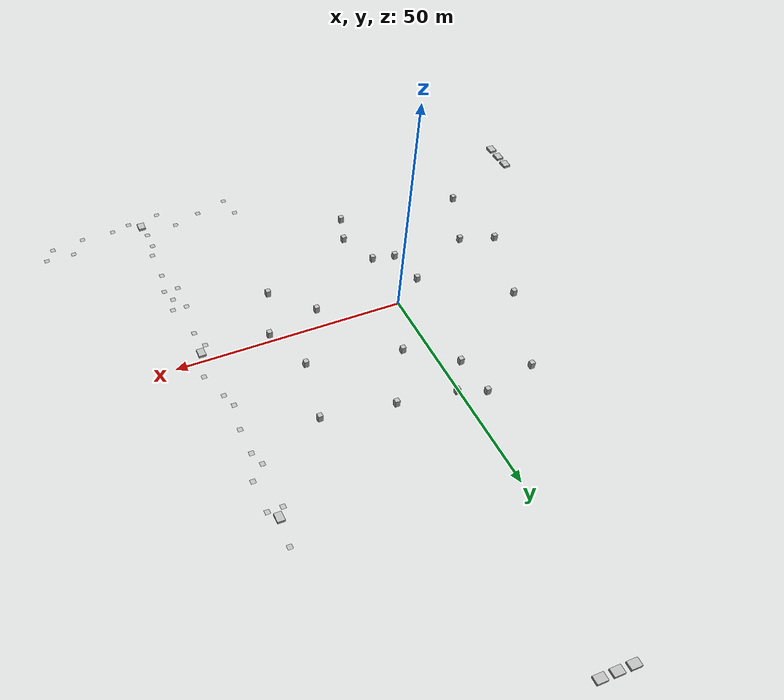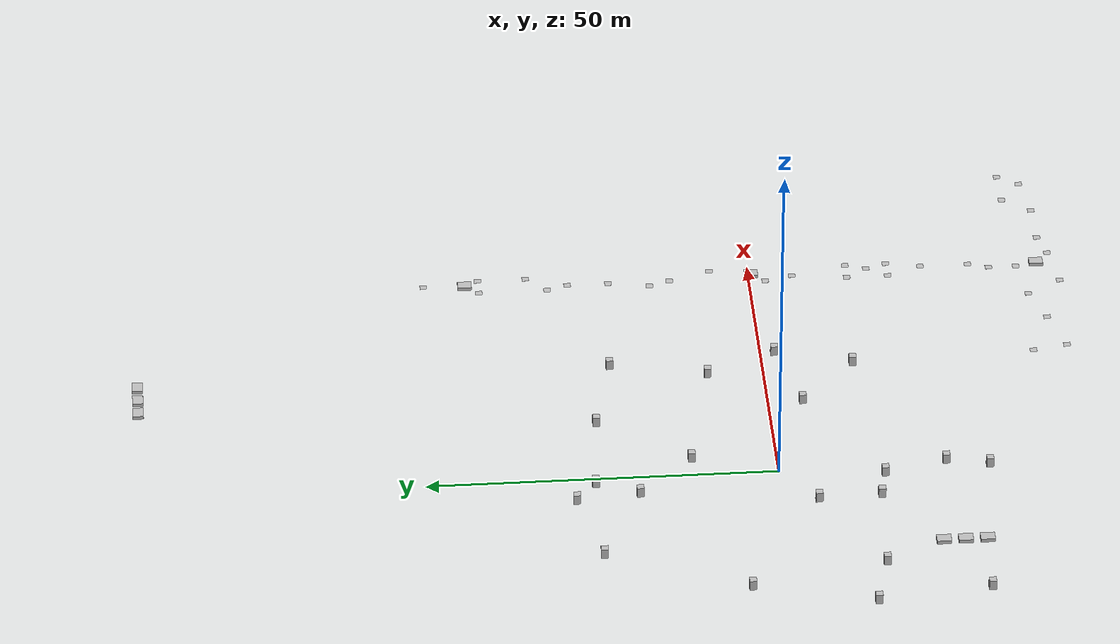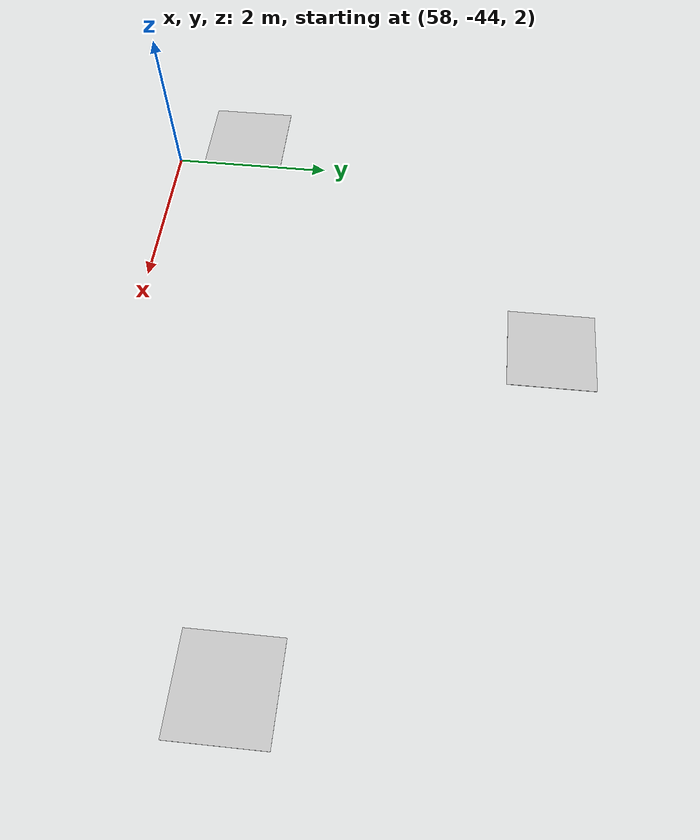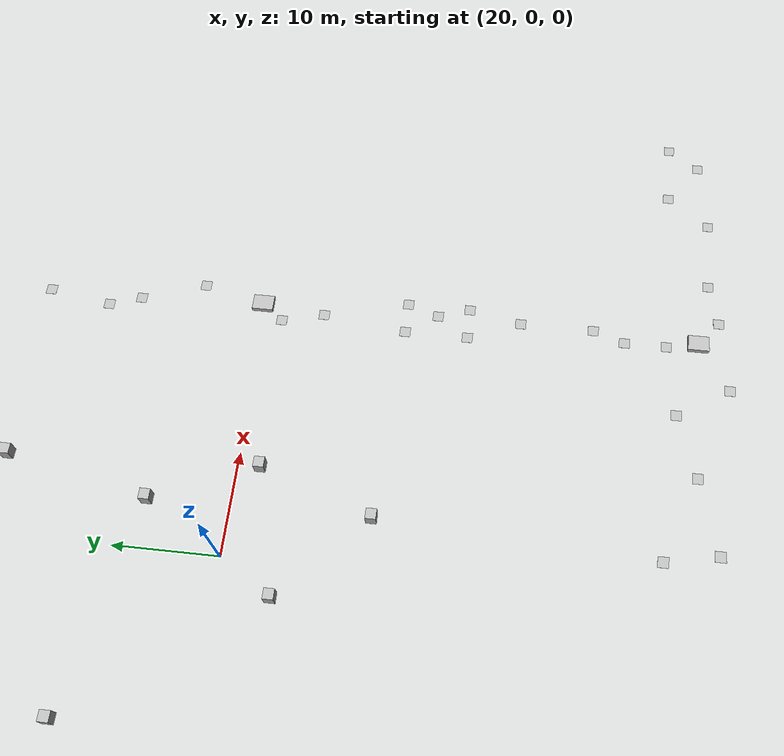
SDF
<sdf version="1.5">
 <world name="default">
  <plugin name="mrs_gazebo_static_transform_republisher_plugin" filename="libMRSGazeboStaticTransformRepublisher.so"/>
  <spherical_coordinates>
   <surface_model>EARTH_WGS84</surface_model>
   <latitude_deg>47.397743</latitude_deg>
   <longitude_deg>8.545594</longitude_deg>
   <elevation>0.0</elevation>
   <heading_deg>0</heading_deg>
  </spherical_coordinates>
  <physics name="default_physics" default="0" type="ode">
   <gravity>0 0 -9.8066</gravity>
   <ode>
    <solver>
     <type>quick</type>
     <iters>10</iters>
     <sor>1.3</sor>
     <use_dynamic_moi_rescaling>0</use_dynamic_moi_rescaling>
    </solver>
    <constraints>
     <cfm>0</cfm>
     <erp>0.2</erp>
     <contact_max_correcting_vel>1000</contact_max_correcting_vel>
     <contact_surface_layer>0.001</contact_surface_layer>
    </constraints>
   </ode>
   <max_step_size>0.004</max_step_size>
   <real_time_factor>1</real_time_factor>
   <real_time_update_rate>250</real_time_update_rate>
   <magnetic_field>6.0e-06 2.3e-05 -4.2e-05</magnetic_field>
  </physics>
  <scene><shadows>false</shadows></scene>
  <light type="directional" name="sun">
   <pose>250 250 600 0 0 0</pose>
   <diffuse>0.8 0.8 0.8 1</diffuse>
   <specular>0.2 0.2 0.2 1</specular>
   <attenuation>
    <range>1000</range>
    <constant>0.9</constant>
    <linear>0.01</linear>
    <quadratic>0.001</quadratic>
   </attenuation>
   <direction>0 0 -1</direction>
  </light>
  <model name="takeoff_platform_1">
   <include><uri>model://takeoff_platform</uri><pose>7.0 90 9.7 0.0 -0.0 1.57</pose></include>
  </model>
  <model name="takeoff_platform_2">
   <include><uri>model://takeoff_platform</uri><pose>10.0 90 9.7 0.0 -0.0 1.57</pose></include>
  </model>
  <model name="takeoff_platform_3">
   <include><uri>model://takeoff_platform</uri><pose>13.0 90 9.7 0.0 -0.0 1.57</pose></include>
  </model>
  <model name="takeoff_platform_pier_1">
   <include><uri>model://takeoff_platform</uri><pose>44.5 -42.0 2.5 0.0 -0.0 0</pose></include>
  </model>
  <model name="takeoff_platform_pier_2">
   <include><uri>model://takeoff_platform</uri><pose>44.5 0.0 2.5 0.0 -0.0 0</pose></include>
  </model>
  <model name="takeoff_platform_pier_3">
   <include><uri>model://takeoff_platform</uri><pose>44.5 42.0 2.5 0.0 -0.0 0</pose></include>
  </model>
  <model name="takeoff_platform_oil_1">
   <include><uri>model://takeoff_platform</uri><pose>-35.0 -19.0 13.5 0.0 -0.0 0</pose></include>
  </model>
  <model name="takeoff_platform_oil_2">
   <include><uri>model://takeoff_platform</uri><pose>-35.0 -22.0 13.5 0.0 -0.0 0</pose></include>
  </model>
  <model name="takeoff_platform_oil_3">
   <include><uri>model://takeoff_platform</uri><pose>-35.0 -25.0 13.5 0.0 -0.0 0</pose></include>
  </model>
  <model name="suspended_landing_platform_0">
   <include><uri>model://suspended_landing_platform</uri><pose>25 -13 1.5 0 -0 0</pose></include>
  </model>
  <model name="suspended_landing_platform_1">
   <include><uri>model://suspended_landing_platform</uri><pose>-25 6 0.5 0 -0 0</pose></include>
  </model>
  <model name="suspended_landing_platform_2">
   <include><uri>model://suspended_landing_platform</uri><pose>-1 -15 1.0 0 -0 0</pose></include>
  </model>
  <model name="suspended_landing_platform_3">
   <include><uri>model://suspended_landing_platform</uri><pose>-7 -5 1.5 0 -0 0</pose></include>
  </model>
  <model name="suspended_landing_platform_4">
   <include><uri>model://suspended_landing_platform</uri><pose>-22 -13 1.5 0 -0 0</pose></include>
  </model>
  <model name="suspended_landing_platform_5">
   <include><uri>model://suspended_landing_platform</uri><pose>-5 29 1.5 0 -0 0</pose></include>
  </model>
  <model name="suspended_landing_platform_6">
   <include><uri>model://suspended_landing_platform</uri><pose>5 12 0.5 0 -0 0</pose></include>
  </model>
  <model name="suspended_landing_platform_7">
   <include><uri>model://suspended_landing_platform</uri><pose>17 -5 1.0 0 -0 0</pose></include>
  </model>
  <model name="suspended_landing_platform_8">
   <include><uri>model://suspended_landing_platform</uri><pose>-30 -11 1.0 0 -0 0</pose></include>
  </model>
  <model name="suspended_landing_platform_9">
   <include><uri>model://suspended_landing_platform</uri><pose>28 22 0.5 0 -0 0</pose></include>
  </model>
  <model name="suspended_landing_platform_10">
   <include><uri>model://suspended_landing_platform</uri><pose>25 8 0.5 0 -0 0</pose></include>
  </model>
  <model name="suspended_landing_platform_11">
   <include><uri>model://suspended_landing_platform</uri><pose>13 25 1.5 0 -0 0</pose></include>
  </model>
  <model name="suspended_landing_platform_12">
   <include><uri>model://suspended_landing_platform</uri><pose>-28 -27 1.0 0 -0 0</pose></include>
  </model>
  <model name="suspended_landing_platform_13">
   <include><uri>model://suspended_landing_platform</uri><pose>-4 20 1.5 0 -0 0</pose></include>
  </model>
  <model name="suspended_landing_platform_14">
   <include><uri>model://suspended_landing_platform</uri><pose>0 -30 1.0 0 -0 0</pose></include>
  </model>
  <model name="suspended_landing_platform_15">
   <include><uri>model://suspended_landing_platform</uri><pose>29 -2 1.0 0 -0 0</pose></include>
  </model>
  <model name="suspended_landing_platform_16">
   <include><uri>model://suspended_landing_platform</uri><pose>-17 26 1.0 0 -0 0</pose></include>
  </model>
  <model name="suspended_landing_platform_17">
   <include><uri>model://suspended_landing_platform</uri><pose>0 26 0.5 0 -0 0</pose></include>
  </model>
  <model name="suspended_landing_platform_18">
   <include><uri>model://suspended_landing_platform</uri><pose>-6 -14 1.0 0 -0 0</pose></include>
  </model>
  <model name="suspended_landing_platform_19">
   <include><uri>model://suspended_landing_platform</uri><pose>2 -24 0.5 0 -0 0</pose></include>
  </model>
  <model name="landing_platform_0">
   <include><uri>model://landing_platform</uri><pose>61 -39 2.5 0 -0 0</pose></include>
  </model>
  <model name="landing_platform_1">
   <include><uri>model://landing_platform</uri><pose>40 -45 2.5 0 -0 0</pose></include>
  </model>
  <model name="landing_platform_2">
   <include><uri>model://landing_platform</uri><pose>65 -42 2.5 0 -0 0</pose></include>
  </model>
  <model name="landing_platform_3">
   <include><uri>model://landing_platform</uri><pose>23 -39 2.5 0 -0 0</pose></include>
  </model>
  <model name="landing_platform_4">
   <include><uri>model://landing_platform</uri><pose>51 -43 2.5 0 -0 0</pose></include>
  </model>
  <model name="landing_platform_5">
   <include><uri>model://landing_platform</uri><pose>58 -43 2.5 0 -0 0</pose></include>
  </model>
  <model name="landing_platform_6">
   <include><uri>model://landing_platform</uri><pose>67 -39 2.5 0 -0 0</pose></include>
  </model>
  <model name="landing_platform_7">
   <include><uri>model://landing_platform</uri><pose>44 -39 2.5 0 -0 0</pose></include>
  </model>
  <model name="landing_platform_8">
   <include><uri>model://landing_platform</uri><pose>47 -44 2.5 0 -0 0</pose></include>
  </model>
  <model name="landing_platform_9">
   <include><uri>model://landing_platform</uri><pose>37 -40 2.5 0 -0 0</pose></include>
  </model>
  <model name="landing_platform_10">
   <include><uri>model://landing_platform</uri><pose>24 -44 2.5 0 -0 0</pose></include>
  </model>
  <model name="landing_platform_11">
   <include><uri>model://landing_platform</uri><pose>31 -42 2.5 0 -0 0</pose></include>
  </model>
  <model name="landing_platform_12">
   <include><uri>model://landing_platform</uri><pose>46 6 2.5 0 -0 0</pose></include>
  </model>
  <model name="landing_platform_13">
   <include><uri>model://landing_platform</uri><pose>46 -14 2.5 0 -0 0</pose></include>
  </model>
  <model name="landing_platform_14">
   <include><uri>model://landing_platform</uri><pose>43 40 2.5 0 -0 0</pose></include>
  </model>
  <model name="landing_platform_15">
   <include><uri>model://landing_platform</uri><pose>43 -20 2.5 0 -0 0</pose></include>
  </model>
  <model name="landing_platform_16">
   <include><uri>model://landing_platform</uri><pose>43 15 2.5 0 -0 0</pose></include>
  </model>
  <model name="landing_platform_17">
   <include><uri>model://landing_platform</uri><pose>45 -32 2.5 0 -0 0</pose></include>
  </model>
  <model name="landing_platform_18">
   <include><uri>model://landing_platform</uri><pose>43 30 2.5 0 -0 0</pose></include>
  </model>
  <model name="landing_platform_19">
   <include><uri>model://landing_platform</uri><pose>44 -35 2.5 0 -0 0</pose></include>
  </model>
  <model name="landing_platform_20">
   <include><uri>model://landing_platform</uri><pose>45 48 2.5 0 -0 0</pose></include>
  </model>
  <model name="landing_platform_21">
   <include><uri>model://landing_platform</uri><pose>43 -14 2.5 0 -0 0</pose></include>
  </model>
  <model name="landing_platform_22">
   <include><uri>model://landing_platform</uri><pose>45 -17 2.5 0 -0 0</pose></include>
  </model>
  <model name="landing_platform_23">
   <include><uri>model://landing_platform</uri><pose>44 27 2.5 0 -0 0</pose></include>
  </model>
  <model name="landing_platform_24">
   <include><uri>model://landing_platform</uri><pose>44 12 2.5 0 -0 0</pose></include>
  </model>
  <model name="landing_platform_25">
   <include><uri>model://landing_platform</uri><pose>44 -6 2.5 0 -0 0</pose></include>
  </model>
  <model name="landing_platform_26">
   <include><uri>model://landing_platform</uri><pose>46 40 2.5 0 -0 0</pose></include>
  </model>
  <model name="landing_platform_27">
   <include><uri>model://landing_platform</uri><pose>45 -25 2.5 0 -0 0</pose></include>
  </model>
  <model name="landing_platform_28">
   <include><uri>model://landing_platform</uri><pose>44 21 2.5 0 -0 0</pose></include>
  </model>
  <model name="landing_platform_29">
   <include><uri>model://landing_platform</uri><pose>43 -2 2.5 0 -0 0</pose></include>
  </model>
  <model name="landing_platform_30">
   <include><uri>model://landing_platform</uri><pose>46 -20 2.5 0 -0 0</pose></include>
  </model>
  <model name="landing_platform_31">
   <include><uri>model://landing_platform</uri><pose>46 33 2.5 0 -0 0</pose></include>
  </model>
 </world>
</sdf>

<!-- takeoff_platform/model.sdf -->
<sdf version='1.7'>
  <model name='takeoff_platform'>
    <link name='link_takeoff_platform'>
      <inertial>
        <mass>15</mass>
        <inertia>
          <ixx>1</ixx>
          <ixy>0</ixy>
          <ixz>0</ixz>
          <iyy>1</iyy>
          <iyz>0</iyz>
          <izz>1</izz>
        </inertia>
      </inertial>
      <self_collide>1</self_collide>
      <enable_wind>0</enable_wind>
      <kinematic>0</kinematic>
      <pose frame=''>0 0 0 0 -0 0</pose>
      <visual name='visual'>
        <pose frame=''>0 0 0 0 -0 0</pose>
        <geometry>
          <mesh>
            <uri>model://takeoff_platform/meshes/takeoff_platform.obj</uri>
            <scale>1 1 1</scale>
          </mesh>
        </geometry>
        <transparency>0</transparency>
        <cast_shadows>1</cast_shadows>
      </visual>
      <collision name='collision'>
        <laser_retro>0</laser_retro>
        <max_contacts>10</max_contacts>
        <pose frame=''>0 0 0 0 -0 0</pose>
        <geometry>
          <mesh>
            <uri>model://takeoff_platform/meshes/takeoff_platform.obj</uri>
            <scale>1 1 1</scale>
          </mesh>
        </geometry>
        <surface>
          <friction>
            <ode>
              <mu>1</mu>
              <mu2>1</mu2>
              <fdir1>0 0 0</fdir1>
              <slip1>0</slip1>
              <slip2>0</slip2>
            </ode>
            <torsional>
              <coefficient>1</coefficient>
              <patch_radius>100</patch_radius>
              <surface_radius>100</surface_radius>
              <use_patch_radius>1</use_patch_radius>
              <ode>
                <slip>0</slip>
              </ode>
            </torsional>
          </friction>
          <bounce>
            <restitution_coefficient>0</restitution_coefficient>
            <threshold>1e+06</threshold>
          </bounce>
          <contact>
            <collide_without_contact>0</collide_without_contact>
            <collide_without_contact_bitmask>1</collide_without_contact_bitmask>
            <collide_bitmask>1</collide_bitmask>
            <ode>
              <soft_cfm>0</soft_cfm>
              <soft_erp>0.2</soft_erp>
              <kp>1e+13</kp>
              <kd>1</kd>
              <max_vel>0.01</max_vel>
              <min_depth>0</min_depth>
            </ode>
            <bullet>
              <split_impulse>1</split_impulse>
              <split_impulse_penetration_threshold>-0.01</split_impulse_penetration_threshold>
              <soft_cfm>0</soft_cfm>
              <soft_erp>0.2</soft_erp>
              <kp>1e+13</kp>
              <kd>1</kd>
            </bullet>
          </contact>
        </surface>
      </collision>
    </link>
    <static>1</static>
    <pose frame=''>0 0 0.0005 0 -0 0</pose>
  </model>
</sdf>

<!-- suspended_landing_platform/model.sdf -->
<sdf version='1.6'>
  <model name='suspended_landing_platform'>
    <link name='link_suspended_landing_platform'>
      <inertial>
        <mass>1</mass>
        <inertia>
          <ixx>0.166667</ixx>
          <ixy>0</ixy>
          <ixz>0</ixz>
          <iyy>0.166667</iyy>
          <iyz>0</iyz>
          <izz>0.166667</izz>
        </inertia>
        <pose>0 0 0 0 -0 0</pose>
      </inertial>
      <self_collide>0</self_collide>
      <enable_wind>0</enable_wind>
      <kinematic>0</kinematic>
      <pose>0 0 0 0 -0 0</pose>
      <gravity>1</gravity>
      <visual name='visual'>
        <pose frame=''>0 0 0 0 -0 0</pose>
        <geometry>
          <mesh>
            <uri>model://suspended_landing_platform/meshes/suspended_landing_platform.obj</uri>
            <scale>1 1 1</scale>
          </mesh>
        </geometry>
        <transparency>0</transparency>
        <cast_shadows>1</cast_shadows>
      </visual>
      <collision name='collision'>
        <laser_retro>0</laser_retro>
        <max_contacts>10</max_contacts>
        <pose>0 0 -0.75 0 -0 0</pose>
        <geometry>
          <box>
            <size>1 1 1.5</size>
          </box>
        </geometry>
        <surface>
          <friction>
            <ode>
              <mu>100</mu>
              <mu2>100</mu2>
              <fdir1>0 0 0</fdir1>
              <slip1>0</slip1>
              <slip2>0</slip2>
            </ode>
            <torsional>
              <coefficient>1</coefficient>
              <patch_radius>1</patch_radius>
              <surface_radius>1</surface_radius>
              <use_patch_radius>1</use_patch_radius>
              <ode>
                <slip>0</slip>
              </ode>
            </torsional>
          </friction>
          <bounce>
            <restitution_coefficient>1</restitution_coefficient>
            <threshold>1e+06</threshold>
          </bounce>
          <contact>
            <collide_without_contact>0</collide_without_contact>
            <collide_without_contact_bitmask>1</collide_without_contact_bitmask>
            <collide_bitmask>1</collide_bitmask>
            <ode>
              <soft_cfm>0</soft_cfm>
              <soft_erp>0.2</soft_erp>
              <kp>1e+13</kp>
              <kd>1</kd>
              <max_vel>0.01</max_vel>
              <min_depth>0</min_depth>
            </ode>
            <bullet>
              <split_impulse>1</split_impulse>
              <split_impulse_penetration_threshold>-0.01</split_impulse_penetration_threshold>
              <soft_cfm>0</soft_cfm>
              <soft_erp>0.2</soft_erp>
              <kp>1e+13</kp>
              <kd>1</kd>
            </bullet>
          </contact>
        </surface>
      </collision>
    </link>
    <static>1</static>
    <allow_auto_disable>1</allow_auto_disable>
  </model>
</sdf>

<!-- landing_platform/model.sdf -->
<sdf version='1.7'>
  <model name='landing_platform'>
    <link name='link_landing_platform'>
      <inertial>
        <mass>1</mass>
        <inertia>
          <ixx>0.09318</ixx>
          <ixy>0.0</ixy>
          <ixz>0</ixz>
          <iyy>0.09318</iyy>
          <iyz>0</iyz>
          <izz>0.18634</izz>
        </inertia>
        <pose>0 0 0 0 -0 0</pose>
      </inertial>
      <self_collide>0</self_collide>
      <enable_wind>0</enable_wind>
      <kinematic>0</kinematic>
      <pose>0 0 0 0 -0 0</pose>
      <gravity>1</gravity>
      <visual name='visual'>
        <pose frame=''>0 0 0 0 -0 0</pose>
        <geometry>
          <mesh>
            <uri>model://landing_platform/meshes/landing_platform.obj</uri>
            <scale>1 1 1</scale>
          </mesh>
        </geometry>
        <transparency>0</transparency>
        <cast_shadows>1</cast_shadows>
      </visual>
      <collision name='collision'>
        <laser_retro>0</laser_retro>
        <max_contacts>10</max_contacts>
        <pose>0 0 0 0 -0 0</pose>
        <geometry>
          <box>
            <size>1 1 0.005</size>
          </box>
        </geometry>
      </collision>
      <surface>
        <friction>
          <ode>
            <mu>100</mu>
            <mu2>100</mu2>
            <fdir1>0 0 0</fdir1>
            <slip1>0</slip1>
            <slip2>0</slip2>
          </ode>
          <torsional>
            <coefficient>1</coefficient>
            <patch_radius>1</patch_radius>
            <surface_radius>1</surface_radius>
            <use_patch_radius>1</use_patch_radius>
            <ode>
              <slip>0</slip>
            </ode>
          </torsional>
        </friction>
        <bounce>
          <restitution_coefficient>1</restitution_coefficient>
          <threshold>1e+06</threshold>
        </bounce>
        <contact>
          <collide_without_contact>0</collide_without_contact>
          <collide_without_contact_bitmask>1</collide_without_contact_bitmask>
          <collide_bitmask>1</collide_bitmask>
          <ode>
            <soft_cfm>0</soft_cfm>
            <soft_erp>0.2</soft_erp>
            <kp>1e+13</kp>
            <kd>1</kd>
            <max_vel>0.01</max_vel>
            <min_depth>0</min_depth>
          </ode>
          <bullet>
            <split_impulse>1</split_impulse>
            <split_impulse_penetration_threshold>-0.01</split_impulse_penetration_threshold>
            <soft_cfm>0</soft_cfm>
            <soft_erp>0.2</soft_erp>
            <kp>1e+13</kp>
            <kd>1</kd>
          </bullet>
        </contact>
      </surface>
    </link>
    <static>1</static>
    <allow_auto_disable>1</allow_auto_disable>
  </model>
</sdf>
